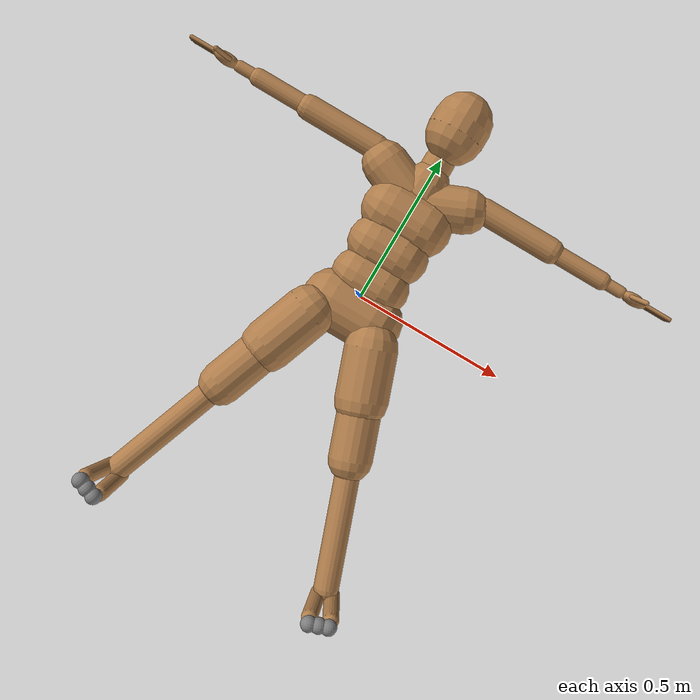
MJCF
<!-- This model has been rescaled and better supports the incorporation of hands. -->
<mujoco model="humanoid_CMU">
  <compiler angle="radian"/>
  <size njmax="500" nconmax="500"/>
  <asset>
    <material name="self" rgba=".7 .5 .3 1"/>
  </asset>

  <default>
    <geom size="0.03 0 0" condim="1" friction="0.7 0.005 0.0001" solref="0.015 1" solimp="0.99 0.99 0.003"/>
    <general ctrllimited="true" ctrlrange="-1 1"/>
    <default class="humanoid">
      <default class="contact">
        <geom condim="3" friction="1. 0.005 0.0001" solref="0.015 1" solimp="0.98 0.98 0.001" priority="1"/>
      </default>
    </default>
  </default>

  <worldbody>
    <light name="tracking_light" pos="0 0 7" dir="0 0 -1" mode="trackcom"/>
    <camera name="back" pos="0 3 1.4" xyaxes="-1 0 0 0 -1 2" mode="trackcom"/>
    <camera name="side" pos="-3 0 1.4" xyaxes="0 -1 0 1 0 2" mode="trackcom"/>
    <camera name="front_side" pos="-2 -2 0.5" xyaxes="0.5 -0.5 0 0.1 0.1 1"  mode="trackcom"/>
    <body name="root" childclass="humanoid">
      <camera name="bodycam" pos="0 .3 .1" xyaxes="-1 0 0 0 1 0" fovy="80"/>
      <site name="root" size=".01" rgba="0.5 0.5 0.5 0"/>
      <geom type="capsule" material="self" group="2" name="root_geom" size="0.1 0.07" pos="0 -0.05 0" quat="1 0 -1 0"/>
      <body name="lhipjoint">
        <geom type="capsule" material="self" group="2" name="lhipjoint" size="0.008 0.02187363" pos="0.0509685 -0.0459037 0.024723" quat="0.5708 -0.566602 -0.594264 0"/>
        <body name="lfemur" pos="0.101937 -0.0918074 0.0494461" quat="0.984808 0 0 0.173648">
          <joint limited="true" solimplimit="0 0.99 0.01" armature=".01" type="hinge" name="lfemurrz" pos="0 0 0" axis="0 0 1" range="-1.0472 1.5707963268" stiffness="10" damping="2"/>
          <joint limited="true" solimplimit="0 0.99 0.01" armature=".01" type="hinge" name="lfemurry" pos="0 0 0" axis="0 1 0" range="-2.3561944902 2.3561944902" stiffness="10" damping="2"/>
          <joint limited="true" solimplimit="0 0.99 0.01" armature=".01" type="hinge" name="lfemurrx" pos="0 0 0" axis="1 0 0" range="-3.1415926536 2.3561944902" stiffness="10" damping="2"/>
          <geom type="capsule" material="self" group="2" name="lfemur_upper" size="0.085 0.083" pos="0 -0.115473 0" quat="0.696364 -0.696364 -0.122788 -0.122788" mass="0"/>
          <geom type="capsule" material="self" group="2" name="lfemur" size="0.07 0.182226" pos="0 -0.202473 0" quat="0.696364 -0.696364 -0.122788 -0.122788" />
          <body name="ltibia" pos="0 -0.404945 0">
            <joint limited="true" solimplimit="0 0.99 0.01" stiffness="1" armature=".01" damping="1" type="hinge" name="ltibiarx" pos="0 0 0" axis="1 0 0" range="-0.1 2.96706"/>
            <geom type="capsule" material="self" group="2" name="ltibia" size="0.04 0.1825614" pos="0 -0.202846 0" quat="0.696364 -0.696364 -0.122788 -0.122788"/>
            <body name="lfoot" pos="0 -0.415693 0" quat="1 -1 0 0">
              <site name="lfoot_touch" type="capsule" pos="0.0 0.02 0.035" size="0.025 0.01" zaxis="1 0 0" group="4" rgba="1 0 0 .5"/>
              <joint limited="true" solimplimit="0 0.99 0.01" armature=".01" type="hinge" name="lfootrz" pos="0 0 0" axis="0 0 1" range="-1.55 0.55" stiffness="10" damping="2"/>
              <joint limited="true" solimplimit="0 0.99 0.01" armature=".01" type="hinge" name="lfootrx" pos="0 0 0" axis="1 0 0" range="-1.3 0.8" stiffness="10" damping="2"/>
              <geom type="capsule" material="self" group="2" name="lfoot" size="0.025 0.08" pos="-0.0269999975006 -0.05 -0.0113878" quat=" 0.76725516 -0.64051114  0.02306487 -0.02306583" class="contact"/>
              <geom type="capsule" material="self" group="2" name="lfoot_ch" size="0.025 0.08" pos="0.0270000024994 -0.05 -0.0113878" quat=" 0.72887266 -0.59399462 -0.24074283 -0.2407425 " class="contact"/>
              <body name="ltoes" pos="0 -0.156372 -0.0227756">
                <joint limited="true" solimplimit="0 0.99 0.01" stiffness="1" armature=".01" damping="1" type="hinge" name="ltoesrx" pos="0 0 0" axis="1 0 0" range="-1.5708 0.349066"/>
                <geom name="ltoes0" type="sphere" size="0.025" pos="0 -0.01 -.01" class="contact"/>
                <geom name="ltoes1" type="sphere" size="0.025" pos=".03 -0.01 -.01" class="contact"/>
                <geom name="ltoes2" type="sphere" size="0.025" pos="-.03 -0.01 -.01" class="contact"/>
                <site name="ltoes_touch" type="capsule" pos="0.0 -0.01 -0.02" size="0.025 0.03" zaxis="1 0 0" group="4" rgba="1 0 0 .5"/>
              </body>
              <body name="lheel_offset" pos="0.025 0 -0.01">
                <site name="lheel_offset_touch" type="sphere" pos="0.0 0 0" size="0.025 0.03" zaxis="1 0 0" group="4" rgba="0 1 0 .5"/>
              </body>
              <body name="ltoes_offset" pos="0.025 -0.106372 -0.0627756">
                <site name="ltoes_offset_touch" type="sphere" pos="0.0 0 0" size="0.025 0.03" zaxis="1 0 0" group="4" rgba="0 1 1 .5"/>
              </body>
            </body>
          </body>
        </body>
      </body>
      <body name="rhipjoint">
        <geom type="capsule" material="self" group="2" name="rhipjoint" size="0.008 0.02187363" pos="-0.0509685 -0.0459037 0.024723" quat="0.574856 -0.547594 0.608014 0"/>
        <body name="rfemur" pos="-0.101937 -0.0918074 0.0494461" quat="0.984808 0 0 -0.173648">
          <joint limited="true" solimplimit="0 0.99 0.01" armature=".01" type="hinge" name="rfemurrz" pos="0 0 0" axis="0 0 1" range="-1.5707963268 1.0472" stiffness="10" damping="2"/>
          <joint limited="true" solimplimit="0 0.99 0.01" armature=".01" type="hinge" name="rfemurry" pos="0 0 0" axis="0 1 0" range="-2.3561944902 2.3561944902" stiffness="10" damping="2"/>
          <joint limited="true" solimplimit="0 0.99 0.01" armature=".01" type="hinge" name="rfemurrx" pos="0 0 0" axis="1 0 0" range="-3.1415926536 2.3561944902" stiffness="10" damping="2"/>
          <geom type="capsule" material="self" group="2" name="rfemur_upper" size="0.085 0.083" pos="0 -0.115473 0" quat="0.696364 -0.696364 0.122788 0.122788" mass="0"/>
          <geom type="capsule" material="self" group="2" name="rfemur" size="0.07 0.182226" pos="0 -0.202473 0" quat="0.696364 -0.696364 0.122788 0.122788" />
          <body name="rtibia" pos="0 -0.404945 0">
            <joint limited="true" solimplimit="0 0.99 0.01" stiffness="1" armature=".01" damping="1" type="hinge" name="rtibiarx" pos="0 0 0" axis="1 0 0" range="-0.1 2.96706"/>
            <geom type="capsule" material="self" group="2" name="rtibia" size="0.04 0.1825614" pos="0 -0.202846 0" quat="0.696364 -0.696364 0.122788 0.122788"/>
            <body name="rfoot" pos="0 -0.415693 0" quat="0.707107 -0.707107 0 0">
              <site name="rfoot_touch" type="capsule" pos="0.0 0.02 0.035" size="0.025 0.01" zaxis="1 0 0" group="4" rgba="1 0 0 .5"/>
              <joint limited="true" solimplimit="0 0.99 0.01" armature=".01" type="hinge" name="rfootrz" pos="0 0 0" axis="0 0 1" range="-0.55 1.55" stiffness="10" damping="2"/>
              <joint limited="true" solimplimit="0 0.99 0.01" armature=".01" type="hinge" name="rfootrx" pos="0 0 0" axis="1 0 0" range="-1.3 0.8" stiffness="10" damping="2"/>
              <geom type="capsule" material="self" group="2" name="rfoot" size="0.025 0.08" pos="-0.0269999965316 -0.05 -0.0113878" quat=" 0.73520687 -0.58633523  0.24050108  0.24050079" class="contact"/>
              <geom type="capsule" material="self" group="2" name="rfoot_ch" size="0.025 0.08" pos="0.0270000034684 -0.05 -0.0113878" quat=" 0.77312469 -0.633231   -0.02545846  0.02545836" class="contact"/>
              <body name="rtoes" pos="0 -0.156372 -0.0227756">
                <joint limited="true" solimplimit="0 0.99 0.01" stiffness="1" armature=".01" damping="1" type="hinge" name="rtoesrx" pos="0 0 0" axis="1 0 0" range="-1.5708 0.349066"/>
                <geom name="rtoes0" type="sphere" size="0.025" pos="0 -0.01 -.01" class="contact"/>
                <geom name="rtoes1" type="sphere" size="0.025" pos=".03 -0.01 -.01" class="contact"/>
                <geom name="rtoes2" type="sphere" size="0.025" pos="-.03 -0.01 -.01" class="contact"/>
                <site name="rtoes_touch" type="capsule" pos="0.0 -0.01 -0.02" size="0.025 0.03" zaxis="1 0 0" group="4" rgba="1 0 0 .5"/>
              </body>
              <body name="rheel_offset" pos="-0.025 0 -0.01">
                <site name="rheel_offset_touch" type="sphere" pos="0.0 0 0" size="0.025 0.03" zaxis="1 0 0" group="4" rgba="0 1 0 .5"/>
              </body>
              <body name="rtoes_offset" pos="-0.025 -0.106372 -0.0627756">
                <site name="rtoes_offset_touch" type="sphere" pos="0.0 0 0" size="0.025 0.03" zaxis="1 0 0" group="4" rgba="0 1 0 .5"/>
              </body>
            </body>
          </body>
        </body>
      </body>
      <body name="lowerback">
        <joint limited="true" solimplimit="0 0.99 0.01" armature=".01" type="hinge" name="lowerbackrz" pos="0 0 0" axis="0 0 1" range="-0.523599 0.523599" stiffness="200" damping="5"/>
        <joint limited="true" solimplimit="0 0.99 0.01" armature=".01" type="hinge" name="lowerbackry" pos="0 0 0" axis="0 1 0" range="-0.523599 0.7" stiffness="200" damping="5"/>
        <joint limited="true" solimplimit="0 0.99 0.01" armature=".01" type="hinge" name="lowerbackrx" pos="0 0 0" axis="1 0 0" range="-0.45 0.9" stiffness="10" damping="2"/>
        <geom type="capsule" material="self" group="2" name="lowerback" size="0.085 0.04540016" pos="0.00282931 0.0566065 0.01" quat="1 0 1 0"/>
        <body name="upperback" pos="0.000565862 0.113213 -0.00805298">
          <joint limited="true" solimplimit="0 0.99 0.01" armature=".01" type="hinge" name="upperbackrz" pos="0 0 0" axis="0 0 1" range="-0.523599 0.523599" stiffness="200" damping="5"/>
          <joint limited="true" solimplimit="0 0.99 0.01" armature=".01" type="hinge" name="upperbackry" pos="0 0 0" axis="0 1 0" range="-0.523599 0.7" stiffness="200" damping="5"/>
          <joint limited="true" solimplimit="0 0.99 0.01" armature=".01" type="hinge" name="upperbackrx" pos="0 0 0" axis="1 0 0" range="-0.349066 0.785398" stiffness="10" damping="2"/>
          <geom type="capsule" material="self" group="2" name="upperback" size="0.09 0.04542616" pos="0.000256264 0.0567802 0.02" quat="1 0 1 0"/>
          <body name="thorax" pos="0.000512528 0.11356 0.000936821">
            <joint limited="true" solimplimit="0 0.99 0.01" armature=".01" type="hinge" name="thoraxrz" pos="0 0 0" axis="0 0 1" range="-0.523599 0.523599" stiffness="200" damping="5"/>
            <joint limited="true" solimplimit="0 0.99 0.01" armature=".01" type="hinge" name="thoraxry" pos="0 0 0" axis="0 1 0" range="-0.523599 0.7" stiffness="200" damping="5"/>
            <joint limited="true" solimplimit="0 0.99 0.01" armature=".01" type="hinge" name="thoraxrx" pos="0 0 0" axis="1 0 0" range="-0.8 1.0" stiffness="10" damping="2"/>
            <geom type="capsule" material="self" group="2" name="thorax" size="0.095 0.0570206" pos="0 0.0569725 0.02" quat="1 0 1 0"/>
            <body name="lowerneck" pos="0 0.113945 0.00468037">
              <joint limited="true" solimplimit="0 0.99 0.01" armature=".01" type="hinge" name="lowerneckrz" pos="0 0 0" axis="0 0 1" range="-0.523599 0.523599" stiffness="50" damping="4"/>
              <joint limited="true" solimplimit="0 0.99 0.01" armature=".01" type="hinge" name="lowerneckry" pos="0 0 0" axis="0 1 0" range="-0.523599 0.523599" stiffness="50" damping="4"/>
              <joint limited="true" solimplimit="0 0.99 0.01" armature=".01" type="hinge" name="lowerneckrx" pos="0 0 0" axis="1 0 0" range="-0.349066 0.785398" stiffness="50" damping="4"/>
              <geom type="capsule" material="self" group="2" name="lowerneck" size="0.075 0.02279225" pos="-0.00165071 0.0452401 0.00534359" quat="1 1 0 0"/>
              <body name="upperneck" pos="-0.00330143 0.0904801 0.0106872">
                <joint limited="true" solimplimit="0 0.99 0.01" armature=".01" type="hinge" name="upperneckrz" pos="0 0 0" axis="0 0 1" range="-0.523599 0.523599" stiffness="50" damping="4"/>
                <joint limited="true" solimplimit="0 0.99 0.01" armature=".01" type="hinge" name="upperneckry" pos="0 0 0" axis="0 1 0" range="-0.523599 0.523599" stiffness="50" damping="4"/>
                <joint limited="true" solimplimit="0 0.99 0.01" armature=".01" type="hinge" name="upperneckrx" pos="0 0 0" axis="1 0 0" range="-0.349066 0.785398" stiffness="50" damping="4"/>
                <geom type="capsule" material="self" group="2" name="upperneck" size="0.05 0.0225272" pos="0.000500875 0.0449956 -0.00224644" quat="1 1 0 0"/>
                <body name="head" pos="0.00100175 0.13 -0.00449288">
                  <camera name="egocentric" pos="0 0 0" xyaxes="-1 0 0 0 1 0" fovy="80"/>
                  <joint limited="true" solimplimit="0 0.99 0.01" armature=".01" type="hinge" name="headrz" pos="0 0 0" axis="0 0 1" range="-0.523599 0.523599" stiffness="50" damping="4"/>
                  <joint limited="true" solimplimit="0 0.99 0.01" armature=".01" type="hinge" name="headry" pos="0 0 0" axis="0 1 0" range="-0.523599 0.523599" stiffness="50" damping="4"/>
                  <joint limited="true" solimplimit="0 0.99 0.01" armature=".01" type="hinge" name="headrx" pos="0 0 0" axis="1 0 0" range="-0.349066 0.785398" stiffness="50" damping="4"/>
                  <geom type="capsule" material="self" group="2" name="head" size="0.095 0.024104" pos="0.000341465 0.048184 0.025" quat="1 1 0 0"/>
                  <body name="head_offset" pos="0 0.075 0.01">
                    <site name="head_offset_debug" type="sphere" size=".03" rgba="0 0 1 1" group="3"/>
                  </body>
                </body>
              </body>
            </body>
            <body name="lclavicle" pos="0 0.113945 0.00468037">
              <joint limited="true" solimplimit="0 0.99 0.01" armature=".01" type="hinge" name="lclaviclerz" pos="0 0 0" axis="0 0 1" range="-0.3926990817 0.3926990817" stiffness="200" damping="5"/>
              <joint limited="true" solimplimit="0 0.99 0.01" armature=".01" type="hinge" name="lclaviclery" pos="0 0 0" axis="0 1 0" range="-1.5708 0.7853981634" stiffness="200" damping="5"/>
              <geom type="capsule" material="self" group="2" name="lclavicle" size="0.075 0.06" pos="0.0918817 0.0382636 0.00535704" quat="0.688 0.279 -0.67 0"/>
              <body name="lhumerus" pos="0.18 0.09 0.0107141" quat="0.183013 0.683013 -0.683013 0.183013">
                <joint limited="true" solimplimit="0 0.99 0.01" armature=".01" type="hinge" name="lhumerusrz" pos="0 0 0" axis="0 0 1" range="-2.2 2.2" stiffness="10" damping="2"/>
                <joint limited="true" solimplimit="0 0.99 0.01" armature=".01" type="hinge" name="lhumerusry" pos="0 0 0" axis="0 1 0" range="-1.5708 1.5708" stiffness="10" damping="2"/>
                <joint limited="true" solimplimit="0 0.99 0.01" armature=".01" type="hinge" name="lhumerusrx" pos="0 0 0" axis="1 0 0" range="-1.5708 2.3562" stiffness="10" damping="2"/>
                <site name="lhumerus_ft" type="sphere" size="0.01" group="4" rgba="1 0 0 .5"/>
                <geom type="capsule" material="self" group="2" name="lhumerus" size="0.042 0.1245789" pos="0 -0.138421 0" quat="0.612372 -0.612372 0.353553 0.353553"/>
                <body name="lradius" pos="0 -0.276843 0">
                  <joint limited="true" solimplimit="0 0.99 0.01" stiffness="1" armature=".01" damping="1" type="hinge" name="lradiusrx" pos="0 0 0" axis="1 0 0" range="-0.174533 2.96706"/>
                  <site name="lradius_ft" type="sphere" size="0.01" group="4" rgba="1 0 0 .5"/>
                  <geom type="capsule" material="self" group="2" name="lradius" size="0.03 0.08169111" pos="0 -0.0907679 0" quat="0.612372 -0.612372 0.353553 0.353553"/>
                  <site name="lwrist" pos="0 -0.181536 0" quat="-0.5 0 0.866025 0"/>
                  <body name="lwrist" pos="0 -0.181536 0" quat="-0.5 0 0.866025 0">
                    <joint limited="true" solimplimit="0 0.99 0.01" stiffness="1" armature=".01" damping="1" type="hinge" name="lwristry" pos="0 0 0" axis="0 1 0" range="0 3.14159"/>
                    <site name="lwrist_ft" type="sphere" size="0.01" group="4" rgba="1 0 0 .5"/>
                    <geom type="capsule" material="self" group="2" name="lwrist" size="0.02 0.03" pos="0 -0.03 0" quat="1.59389e-11 -1.59388e-11 -0.707107 -0.707107"/>
                    <body name="lhand" pos="0 -0.0907676 0">
                      <joint limited="true" solimplimit="0 0.99 0.01" stiffness="1" armature=".01" damping="1" type="hinge" name="lhandrz" pos="0 0 0" axis="0 0 1" range="-0.785398 0.785398"/>
                      <joint limited="true" solimplimit="0 0.99 0.01" stiffness="1" armature=".01" damping="1" type="hinge" name="lhandrx" pos="0 0 0" axis="1 0 0" range="-1.5708 1.5708"/>
                      <site name="lhand_touch" size=".012 0.005 0.015" pos="0 -0.016752 -0.02" quat="0 0 -1 -1" type="ellipsoid" group="4" rgba="1 0 0 .5"/>
                      <geom material="self" group="2" name="lhand" size="0.035 0.02 0.045" pos="0 -0.016752 0" quat="0 0 -1 -1" type="ellipsoid" class="contact"/>
                      <body name="lfingers" pos="0 -0.075 0">
                        <joint limited="true" solimplimit="0 0.99 0.01" stiffness="1" armature=".01" damping="1" type="hinge" name="lfingersrx" pos="0 0.015 0" axis="1 0 0" range="0 1.5708"/>
                        <site name="lfingers_touch" type="box" size="0.023 0.013 0.003" pos="0 -0.042 -0.007" group="4" rgba="1 0 0 .5"/>
                        <geom type="capsule" material="self" group="2" name="lfinger0" size="0.0065 0.04" pos="-.024 -0.025 0" quat="1 -1 0 0" class="contact"/>
                        <geom type="capsule" material="self" group="2" name="lfinger1" size="0.0065 0.04" pos="-.008 -0.03 0" quat="1 -1 0 0" class="contact"/>
                        <geom type="capsule" material="self" group="2" name="lfinger2" size="0.006 0.04" pos=".008 -0.03 0" quat="1 -1 0 0" class="contact"/>
                        <geom type="capsule" material="self" group="2" name="lfinger3" size="0.0055 0.04" pos=".024 -0.025 0" quat="1 -1 0 0" class="contact"/>
                      </body>
                      <body name="lthumb" pos="-.025 0 0" quat="0.92388 0 0 -0.382683">
                        <joint limited="true" solimplimit="0 0.99 0.01" stiffness="1" armature=".01" damping="1" type="hinge" name="lthumbrz" pos="0 0 0" axis="0 0 1" range="-0.785398 0.785398"/>
                        <joint limited="true" solimplimit="0 0.99 0.01" stiffness="1" armature=".01" damping="1" type="hinge" name="lthumbrx" pos="0 0 0" axis="1 0 0" range="0 1.57"/>
                        <site name="lthumb_touch" type="box" size="0.006 0.013 0.003" pos="0 -0.043 -0.007" group="4" rgba="1 0 0 .5"/>
                        <geom type="capsule" material="self" group="2" name="lthumb" size="0.008 0.03" pos="0 -0.03 0" quat="0 0 -1 -1" class="contact"/>
                      </body>
                    </body>
                  </body>
                </body>
              </body>
            </body>
            <body name="rclavicle" pos="0 0.113945 0.00468037">
              <joint limited="true" solimplimit="0 0.99 0.01" armature=".01" type="hinge" name="rclaviclerz" pos="0 0 0" axis="0 0 1" range="-0.3926990817 0.3926990817" stiffness="200" damping="5"/>
              <joint limited="true" solimplimit="0 0.99 0.01" armature=".01" type="hinge" name="rclaviclery" pos="0 0 0" axis="0 1 0" range="-0.7853981634 1.5708" stiffness="200" damping="5"/>
              <geom type="capsule" material="self" group="2" name="rclavicle" size="0.075 0.06" pos="-0.0918817 0.0382636 0.00535704" quat="0.688 0.279 0.67 0"/>
              <body name="rhumerus" pos="-0.18 0.09 0.0107141" quat="0.183013 0.683013 0.683013 -0.183013">
                <joint limited="true" solimplimit="0 0.99 0.01" armature=".01" type="hinge" name="rhumerusrz" pos="0 0 0" axis="0 0 1" range="-2.2 2.2" stiffness="10" damping="2"/>
                <joint limited="true" solimplimit="0 0.99 0.01" armature=".01" type="hinge" name="rhumerusry" pos="0 0 0" axis="0 1 0" range="-1.5708 1.5708" stiffness="10" damping="2"/>
                <joint limited="true" solimplimit="0 0.99 0.01" armature=".01" type="hinge" name="rhumerusrx" pos="0 0 0" axis="1 0 0" range="-1.5708 2.3562" stiffness="10" damping="2"/>
                <site name="rhumerus_ft" type="sphere" size="0.01" group="4" rgba="1 0 0 .5"/>
                <geom type="capsule" material="self" group="2" name="rhumerus" size="0.042 0.1245789" pos="0 -0.138421 0" quat="0.612372 -0.612372 -0.353553 -0.353553"/>
                <body name="rradius" pos="0 -0.276843 0">
                  <joint limited="true" solimplimit="0 0.99 0.01" stiffness="1" armature=".01" damping="1" type="hinge" name="rradiusrx" pos="0 0 0" axis="1 0 0" range="-0.174533 2.96706"/>
                  <site name="rradius_ft" type="sphere" size="0.01" group="4" rgba="1 0 0 .5"/>
                  <geom type="capsule" material="self" group="2" name="rradius" size="0.03 0.08169111" pos="0 -0.0907679 0" quat="0.61238 -0.612372 -0.353554 -0.353541"/>
                  <body name="rwrist" pos="0 -0.181536 0" quat="-0.5 0 -0.866025 0">
                    <joint limited="true" solimplimit="0 0.99 0.01" stiffness="1" armature=".01" damping="1" type="hinge" name="rwristry" pos="0 0 0" axis="0 1 0" range="-3.14159 0"/>
                    <site name="rwrist_ft" type="sphere" size="0.01" group="4" rgba="1 0 0 .5"/>
                    <geom type="capsule" material="self" group="2" name="rwrist" size="0.02 0.03" pos="0 -0.03 0" quat="0 0 1 1"/>
                    <body name="rhand" pos="0 -0.0907676 0">
                      <joint limited="true" solimplimit="0 0.99 0.01" stiffness="1" armature=".01" damping="1" type="hinge" name="rhandrz" pos="0 0 0" axis="0 0 1" range="-0.785398 0.785398"/>
                      <joint limited="true" solimplimit="0 0.99 0.01" stiffness="1" armature=".01" damping="1" type="hinge" name="rhandrx" pos="0 0 0" axis="1 0 0" range="-1.5708 1.5708"/>
                      <site name="rhand_touch" size=".012 0.005 0.015" pos="0 -0.016752 -0.02" quat="0 0 1 1" type="ellipsoid" group="4" rgba="1 0 0 .5"/>
                      <geom material="self" group="2" name="rhand" size="0.035 0.02 0.045" pos="0 -0.016752 0" quat="0 0 1 1" type="ellipsoid" class="contact"/>
                      <body name="rfingers" pos="0 -0.075 0">
                        <joint limited="true" solimplimit="0 0.99 0.01" stiffness="1" armature=".01" damping="1" type="hinge" name="rfingersrx" pos="0 0.015 0" axis="1 0 0" range="0 1.5708"/>
                        <site name="rfingers_touch" type="box" size="0.023 0.013 0.003" pos="0 -0.042 -0.007" group="4" rgba="1 0 0 .5"/>
                        <geom type="capsule" material="self" group="2" name="rfinger0" size="0.0065 0.04" pos=".024 -0.025 0" quat="1 -1 0 0" class="contact"/>
                        <geom type="capsule" material="self" group="2" name="rfinger1" size="0.0065 0.04" pos=".008 -0.03 0" quat="1 -1 0 0" class="contact"/>
                        <geom type="capsule" material="self" group="2" name="rfinger2" size="0.006 0.04" pos="-.008 -0.03 0" quat="1 -1 0 0" class="contact"/>
                        <geom type="capsule" material="self" group="2" name="rfinger3" size="0.0055 0.04" pos="-.024 -0.025 0" quat="1 -1 0 0" class="contact"/>
                      </body>
                      <body name="rthumb" pos=".025 0 0" quat="0.92388 0 0 0.382683">
                        <joint limited="true" solimplimit="0 0.99 0.01" stiffness="1" armature=".01" damping="1" type="hinge" name="rthumbrz" pos="0 0 0" axis="0 0 1" range="-0.785398 0.785398"/>
                        <joint limited="true" solimplimit="0 0.99 0.01" stiffness="1" armature=".01" damping="1" type="hinge" name="rthumbrx" pos="0 0 0" axis="1 0 0" range="0 1.57"/>
                        <site name="rthumb_touch" type="box" size="0.006 0.013 0.003" pos="0 -0.043 -0.007" group="4" rgba="1 0 0 .5"/>
                        <geom type="capsule" material="self" group="2" name="rthumb" size="0.008 0.03" pos="0 -0.03 0" quat="6.21773e-11 -6.35284e-11 0.707107 0.707107" class="contact"/>
                      </body>
                    </body>
                  </body>
                </body>
              </body>
            </body>
          </body>
        </body>
      </body>
    </body>
  </worldbody>

  <contact>
    <exclude body1="lclavicle" body2="rclavicle"/>
    <exclude body1="lowerneck" body2="lclavicle"/>
    <exclude body1="lowerneck" body2="rclavicle"/>
    <exclude body1="upperneck" body2="lclavicle"/>
    <exclude body1="upperneck" body2="rclavicle"/>
  </contact>

  <actuator>
    <motor name="headrx" joint="headrx" gear="20"/>
    <motor name="headry" joint="headry" gear="20"/>
    <motor name="headrz" joint="headrz" gear="20"/>
    <motor name="lclaviclery" joint="lclaviclery" gear="20"/>
    <motor name="lclaviclerz" joint="lclaviclerz" gear="20"/>
    <motor name="lfemurrx" joint="lfemurrx" gear="120"/>
    <motor name="lfemurry" joint="lfemurry" gear="40"/>
    <motor name="lfemurrz" joint="lfemurrz" gear="40"/>
    <motor name="lfingersrx" joint="lfingersrx" gear="20"/>
    <motor name="lfootrx" joint="lfootrx" gear="20"/>
    <motor name="lfootrz" joint="lfootrz" gear="20"/>
    <motor name="lhandrx" joint="lhandrx" gear="20"/>
    <motor name="lhandrz" joint="lhandrz" gear="20"/>
    <motor name="lhumerusrx" joint="lhumerusrx" gear="40"/>
    <motor name="lhumerusry" joint="lhumerusry" gear="40"/>
    <motor name="lhumerusrz" joint="lhumerusrz" gear="40"/>
    <motor name="lowerbackrx" joint="lowerbackrx" gear="40"/>
    <motor name="lowerbackry" joint="lowerbackry" gear="40"/>
    <motor name="lowerbackrz" joint="lowerbackrz" gear="40"/>
    <motor name="lowerneckrx" joint="lowerneckrx" gear="20"/>
    <motor name="lowerneckry" joint="lowerneckry" gear="20"/>
    <motor name="lowerneckrz" joint="lowerneckrz" gear="20"/>
    <motor name="lradiusrx" joint="lradiusrx" gear="40"/>
    <motor name="lthumbrx" joint="lthumbrx" gear="20"/>
    <motor name="lthumbrz" joint="lthumbrz" gear="20"/>
    <motor name="ltibiarx" joint="ltibiarx" gear="80"/>
    <motor name="ltoesrx" joint="ltoesrx" gear="20"/>
    <motor name="lwristry" joint="lwristry" gear="20"/>
    <motor name="rclaviclery" joint="rclaviclery" gear="20"/>
    <motor name="rclaviclerz" joint="rclaviclerz" gear="20"/>
    <motor name="rfemurrx" joint="rfemurrx" gear="120"/>
    <motor name="rfemurry" joint="rfemurry" gear="40"/>
    <motor name="rfemurrz" joint="rfemurrz" gear="40"/>
    <motor name="rfingersrx" joint="rfingersrx" gear="20"/>
    <motor name="rfootrx" joint="rfootrx" gear="20"/>
    <motor name="rfootrz" joint="rfootrz" gear="20"/>
    <motor name="rhandrx" joint="rhandrx" gear="20"/>
    <motor name="rhandrz" joint="rhandrz" gear="20"/>
    <motor name="rhumerusrx" joint="rhumerusrx" gear="40"/>
    <motor name="rhumerusry" joint="rhumerusry" gear="40"/>
    <motor name="rhumerusrz" joint="rhumerusrz" gear="40"/>
    <motor name="rradiusrx" joint="rradiusrx" gear="40"/>
    <motor name="rthumbrx" joint="rthumbrx" gear="20"/>
    <motor name="rthumbrz" joint="rthumbrz" gear="20"/>
    <motor name="rtibiarx" joint="rtibiarx" gear="80"/>
    <motor name="rtoesrx" joint="rtoesrx" gear="20"/>
    <motor name="rwristry" joint="rwristry" gear="20"/>
    <motor name="thoraxrx" joint="thoraxrx" gear="40"/>
    <motor name="thoraxry" joint="thoraxry" gear="40"/>
    <motor name="thoraxrz" joint="thoraxrz" gear="40"/>
    <motor name="upperbackrx" joint="upperbackrx" gear="40"/>
    <motor name="upperbackry" joint="upperbackry" gear="40"/>
    <motor name="upperbackrz" joint="upperbackrz" gear="40"/>
    <motor name="upperneckrx" joint="upperneckrx" gear="20"/>
    <motor name="upperneckry" joint="upperneckry" gear="20"/>
    <motor name="upperneckrz" joint="upperneckrz" gear="20"/>
  </actuator>

  <sensor>
    <velocimeter name="sensor_root_veloc" site="root"/>
    <gyro name="sensor_root_gyro" site="root"/>
    <accelerometer name="sensor_root_accel" site="root"/>
    <touch name="sensor_touch_lhand" site="lhand_touch"/>
    <touch name="sensor_touch_lfingers" site="lfingers_touch"/>
    <touch name="sensor_touch_lthumb" site="lthumb_touch"/>
    <touch name="sensor_touch_rhand" site="rhand_touch"/>
    <touch name="sensor_touch_rfingers" site="rfingers_touch"/>
    <touch name="sensor_touch_rthumb" site="rthumb_touch"/>
    <touch name="sensor_touch_ltoes" site="ltoes_touch"/>
    <touch name="sensor_touch_rtoes" site="rtoes_touch"/>
    <touch name="sensor_touch_rfoot" site="rfoot_touch"/>
    <touch name="sensor_touch_lfoot" site="lfoot_touch"/>
    <torque name="sensor_torque_lhumerus" site="lhumerus_ft"/>
    <torque name="sensor_torque_rhumerus" site="rhumerus_ft"/>
  </sensor>

</mujoco>
